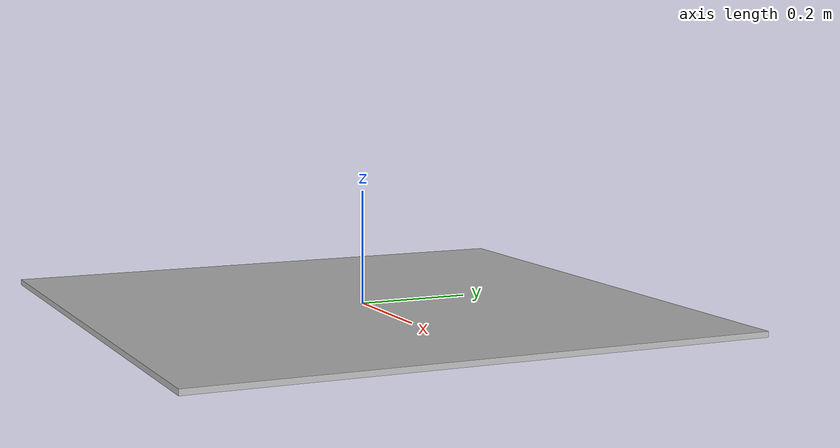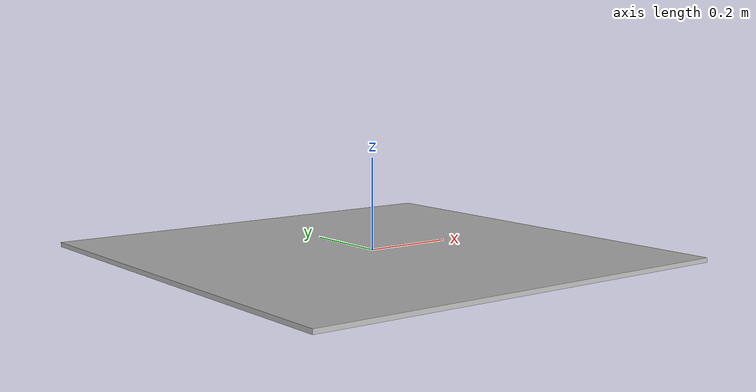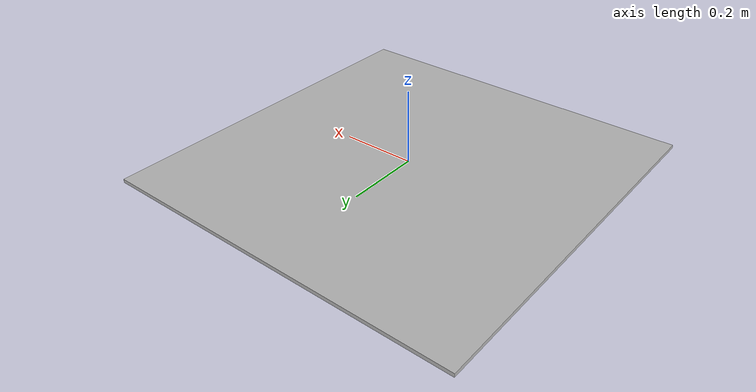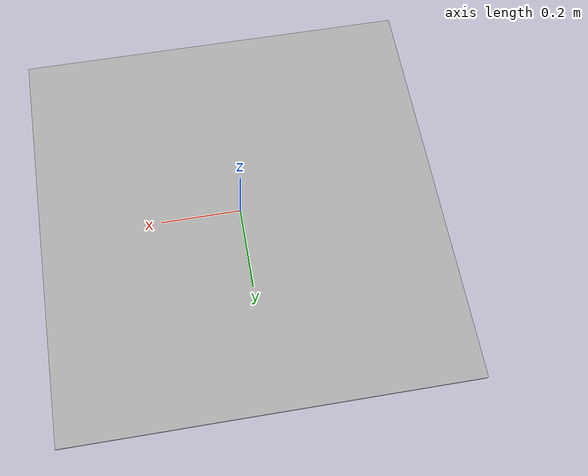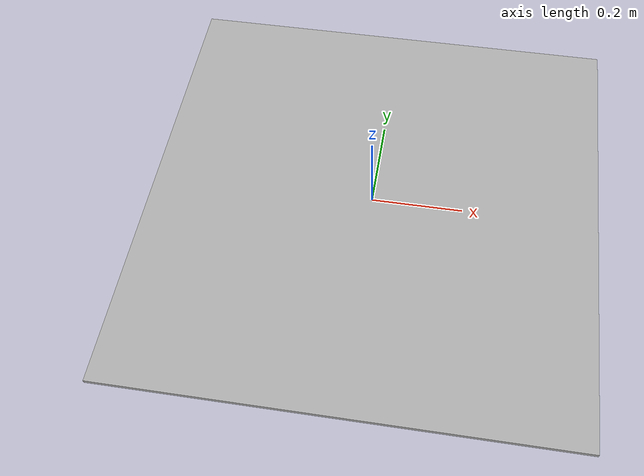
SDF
<?xml version='1.0'?>
<sdf version='1.7'>
  <model name='Debug'>

    <include>
      <uri>model://Ground_Base_Model</uri>
    </include>

    <link name='Ground_Pattern'>
      <pose>0 0 0 0 3.14 0</pose>
      <collision name='Ground_Collision'>
        <pose>0 0 0.05 0 0 0</pose>
        <geometry>
          <box>
            <size>1 1 0.1</size>
          </box>
        </geometry>
      </collision>
      <visual name='Pattern_Visual'>
        <pose>0 0 0.005 0 0 0</pose>
        <geometry>
          <box>
            <size>1 1 0.01</size>
          </box>
        </geometry>
        <material>
          <script>
            <uri>model://Desert_Pattern/Ground_Texture/Ground.material</uri>
            <name>Ground_Mat</name>
          </script>
        </material>
      </visual>
    </link>

    <static>0</static>
    <allow_auto_disable>1</allow_auto_disable>
  </model>
</sdf>

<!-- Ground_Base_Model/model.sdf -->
<sdf version='1.7'>
  <model name='Ground_Base_Model'>
    <static>1</static>
    <link name='Ground_Link'>
      <pose>0 0 0 0 3.14 0</pose>
      <inertial>
        <mass>1000</mass>
        <pose>0 0 0 0 0 0</pose>
        <inertia>
          <ixx>500</ixx>
          <ixy>0</ixy>
          <ixz>0</ixz>
          <iyy>500</iyy>
          <iyz>0</iyz>
          <izz>1000</izz>
        </inertia>
      </inertial>
      <self_collide>0</self_collide>
      <enable_wind>0</enable_wind>
      <kinematic>0</kinematic>
      <gravity>0</gravity>

    </link>

    <allow_auto_disable>1</allow_auto_disable>
  </model>
</sdf>
